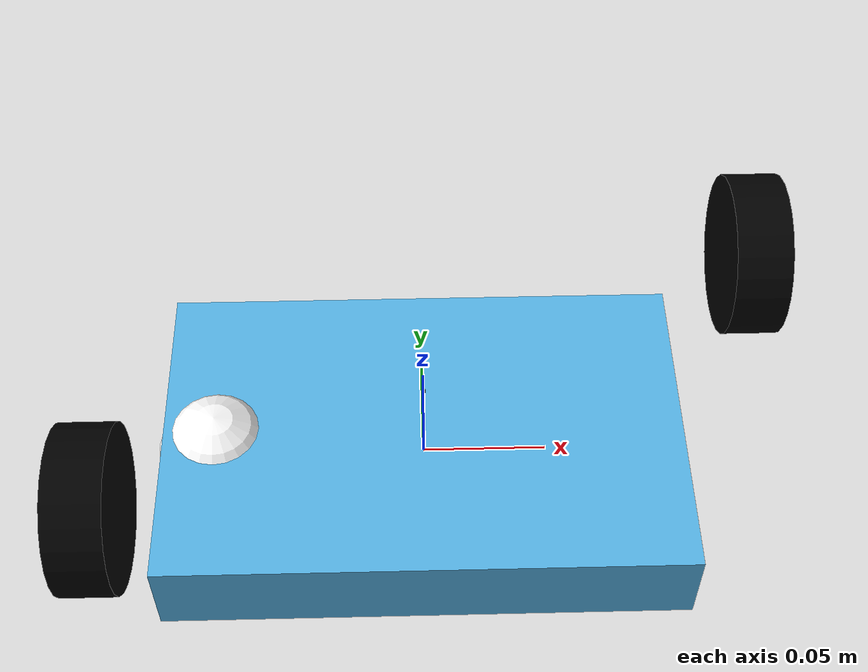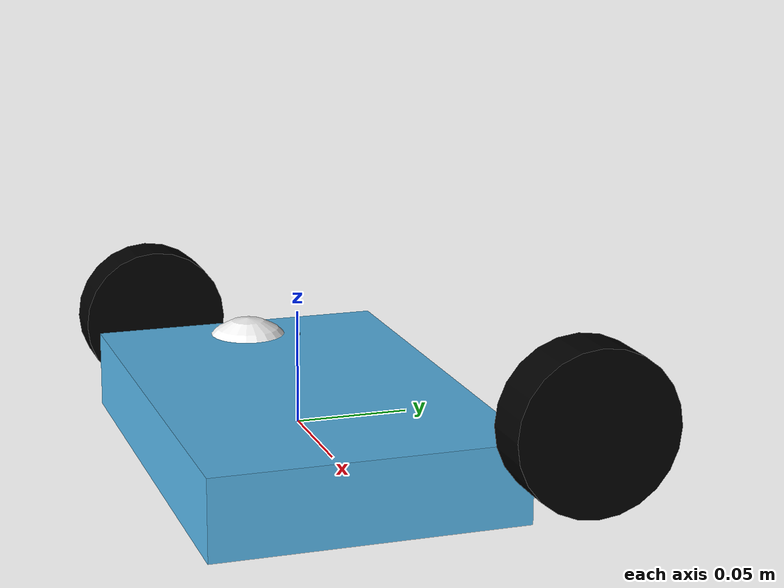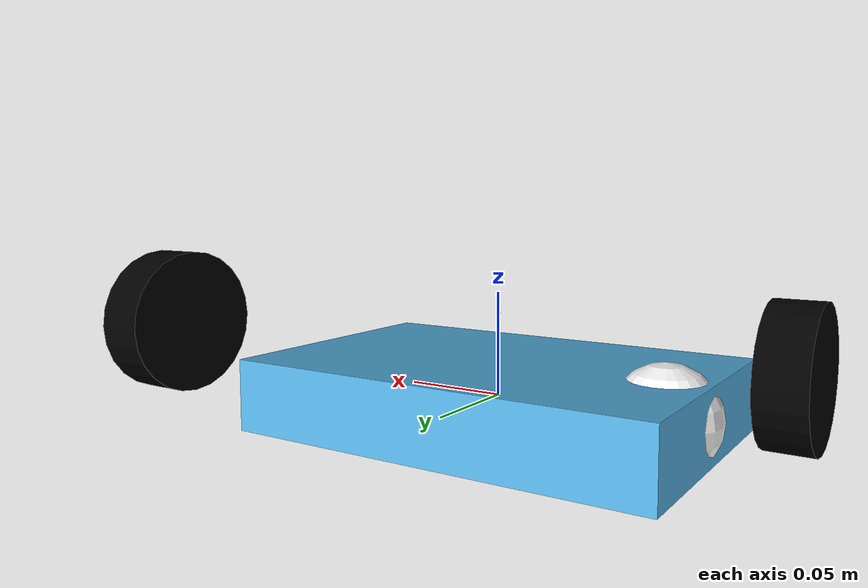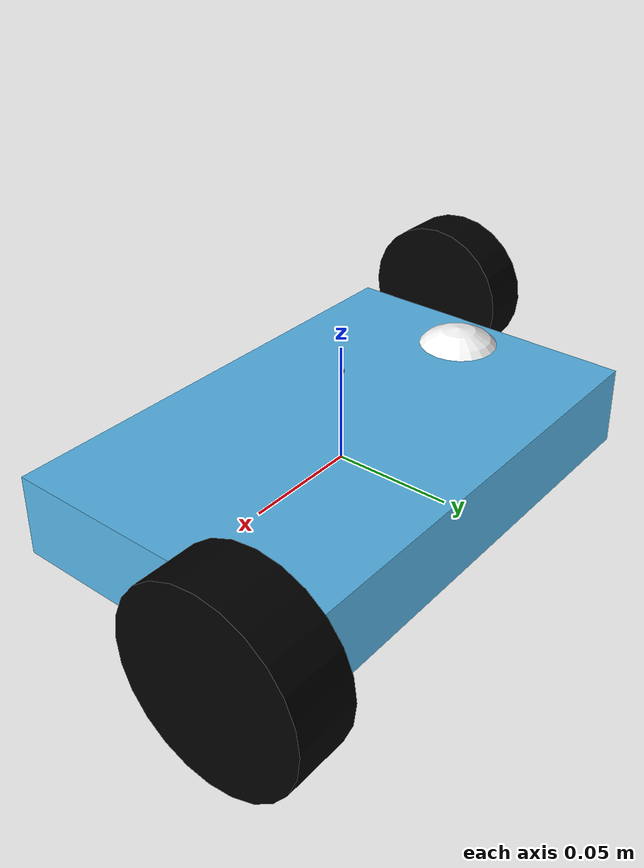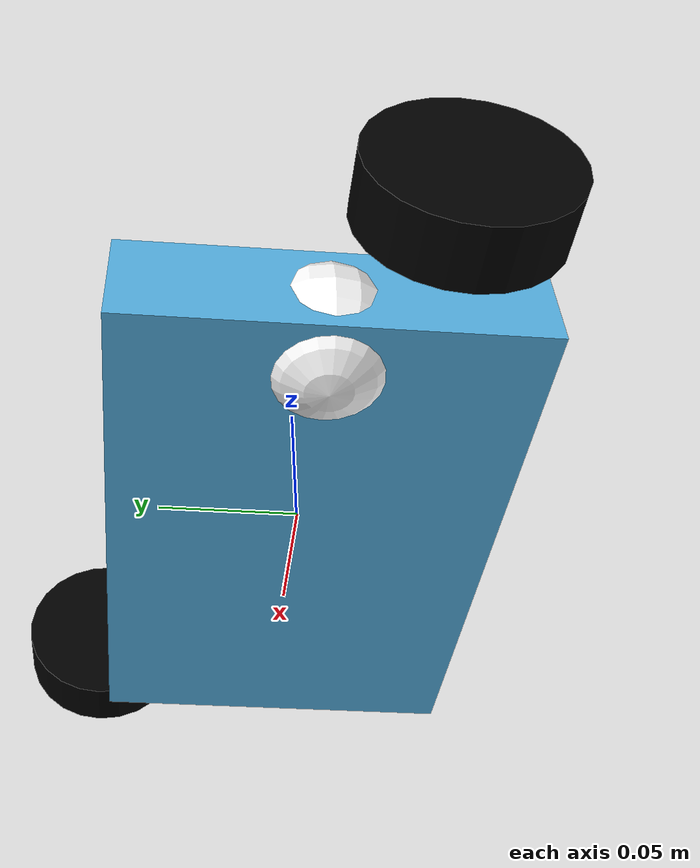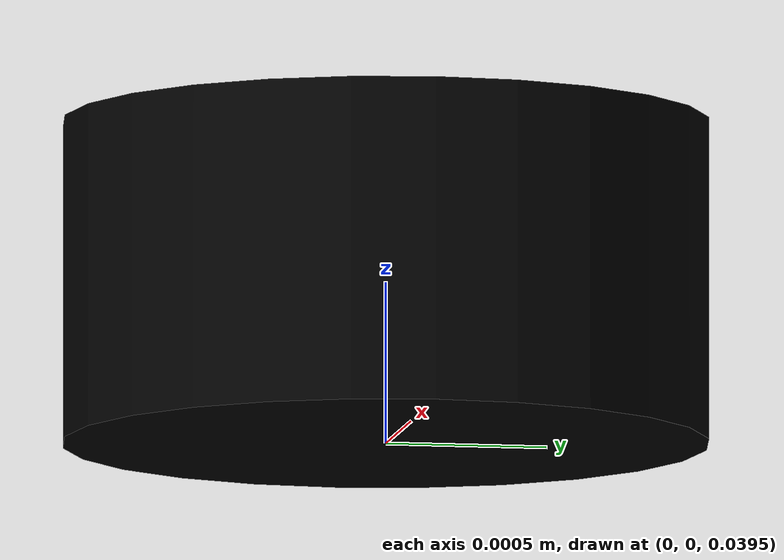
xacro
<?xml version='1.0' ?>

<robot name="verde" xmlns:xacro="http://www.ros.org/wiki/xacro">
	<material name="black">
    		<color rgba="0 0 0 1"/>
  	</material>

    	<link name="base_footprint" />

    	<joint name="base_to_base" type="fixed">
        	<parent link="base_footprint" />
        	<child link="base_link" />
        	<origin xyz="0 0 0" rpy="0 0 0" />
    	</joint>

  	<link name="base_link">
    		<visual>
      			<orgin rpy="0 0 0" xyz="0 0 0"/>
      			<geometry>
        			<box size="0.21 0.135 0.035"/> <!-- ver medidas -->
      			</geometry>
    		</visual>
    		<collision>
    			<orgin rpy="0 0 0" xyz="0 0 0"/>
      			<geometry>
        			<box size="0.21 0.135 0.035"/>
      			</geometry>
    		</collision>
  	</link>

        <!--Front left wheel-->
  	<joint name="fl_holder_joint" type="revolute">
    		<axis xyz="0 0 1"/>
    		<limit effort="1000.0" lower="-0.4" upper="0.4" velocity="0.5"/>
    		<origin rpy="0 0 0" xyz="0.07 -0.037 0.0175"/>
    		<parent link="base_link"/>
    		<child link="fl_wheel_link"/>
  	</joint>

  	<link name="fl_wheel_link">
    		<visual>
      			<orgin rpy="0 0 0" xyz="0.07 -0.037 0.0175"/>
      			<geometry>
        			<box size="0 0 0"/>
      			</geometry>
    		</visual>
  	</link>

  	<joint name="fl_wheel_joint" type="continuous">
    		<axis xyz="0 0 1"/>
    		<origin rpy="0 1.57 0" xyz="-0.2 0 0"/>
    		<parent link="fl_wheel_link"/>
    		<child link="fl_wheel"/>
  	</joint>

  	<link name="fl_wheel">
    		<visual>
      			<orgin rpy="0 0 0" xyz="0.07 -0.037 0.0175"/>
      			<geometry>
        			<cylinder radius="0.034" length="0.023"/>
      			</geometry>
      			<material name="black"/>
    		</visual>
    		<collision>
    			<orgin rpy="0 0 0" xyz="0.07 -0.037 0.0175"/>
    			<geometry>
        			<cylinder radius="0.034" length="0.023"/>
      			</geometry>
    		</collision>
  	</link>

  	<!--Front right wheel-->
  	<joint name="fr_holder_joint" type="revolute">
    		<axis xyz="0 0 1"/>
    		<limit effort="1000.0" lower="-0.4" upper="0.4" velocity="0.5"/>
    		<origin rpy="0 0 0" xyz="0.07 0.037 0.0175"/>
    		<parent link="base_link"/>
    		<child link="fr_wheel_link"/>
  	</joint>

  	<link name="fr_wheel_link">
    		<visual>
      			<orgin rpy="0 0 0" xyz="0.07 0.037 0.0175"/>
      			<geometry>
        			<box size="0 0 0"/>
      			</geometry>
    		</visual>
  	</link>

  	<joint name="fr_wheel_joint" type="continuous">
    		<axis xyz="0 0 1"/>
    			<origin rpy="0 1.57 0" xyz="0.07 0.037 0.0175"/>
    			<parent link="fr_wheel_link"/>
    			<child link="fr_wheel"/>
  	</joint>

  	<link name="fr_wheel">
    		<visual>
      			<orgin rpy="0 0 0" xyz="0.07 0.037 0.0175"/>
      			<geometry>
        			<cylinder radius="0.034" length="0.023"/>
      			</geometry>
      			<material name="black"/>
    		</visual>
    		<collision>
    			<orgin rpy="0 0 0" xyz="0.07 0.037 0.0175"/>
      			<geometry>
        			<cylinder radius="0.034" length="0.023"/>
      			</geometry>
    		</collision>
  	</link>

 	<!-- falta o caster isto é tudo para ver e medir-->
 	<link name="fcaster_link">
    		<visual>
      			<geometry>
         			<sphere radius="0.025"/>
      			</geometry>
      			<origin rpy="0 0 0" xyz="0 0 0"/>
      			<material name="white">
        			<color rgba="1 1 1 1"/>
      			</material>
    		</visual>
    		<collision>
      			<origin rpy="0 0 0" xyz="0 0 0"/>
      			<geometry>
        			<sphere radius="0.025"/>
      			</geometry>
    		</collision>
    		<inertial>
      			<origin rpy="0 0 0" xyz="0 0 0"/>
      			<mass value="1"/>
      			<inertia ixx="0.0025348958333333334" ixy="0" ixz="0" iyy="0.0025348958333333334" iyz="0" izz="0.0034031250000000003"/>
    		</inertial>
  	</link>

  	<joint name="fcaster_joint" type="revolute">
    		<parent link="base_link"/>
    		<child link="fcaster_link"/>
    		<origin rpy="0 0 0" xyz="-0.084 0 0"/>
    		<limit effort="1" lower="0" upper="0" velocity="5.0"/>
  	</joint>

  	<link name="base_scan">
        	<visual>
            		<geometry>
                		<cylinder radius="0.0" length="0.0" />
            		</geometry>
            		<origin xyz="-0.048 0 0.0" rpy="0 0 3.1415927" />
            		<material name="black">
                		<color rgba="0 0 0 1" />
            		</material>
        	</visual>
    	</link>

    	<joint name="base_to_scanner" type="fixed">
        	<parent link="base_link" />
        	<child link="base_scan" />
        	<origin xyz="-0.048 0 0.157" rpy="0 0 0" />
    	</joint>

	<link name="imu_link" />

  	<joint name="imu_joint" type="fixed">
        	<parent link="base_link" />
        	<child link="imu_link" />
        	<origin rpy="0 0 0" xyz="0 0 0" />
  	</joint>

  	 <!--************* ROBOT'S CAMERA **************-->
    	<link name="camera_link">
        	<visual>
            	<geometry>
                	<cylinder radius="0.001" length="0.001" />
            	</geometry>
            <origin rpy="0 0 1.57" xyz="0 0 0" />
            <material name="black">
                <color rgba="0 0 0 1" />
            </material>
        </visual>
    </link>

    <joint name="camera_joint" type="fixed">
        <parent link="base_link" />
        <child link="camera_link" />
        <origin rpy="0 0 0" xyz="0.0 0.0 0.04" />
    </joint>

</robot>
